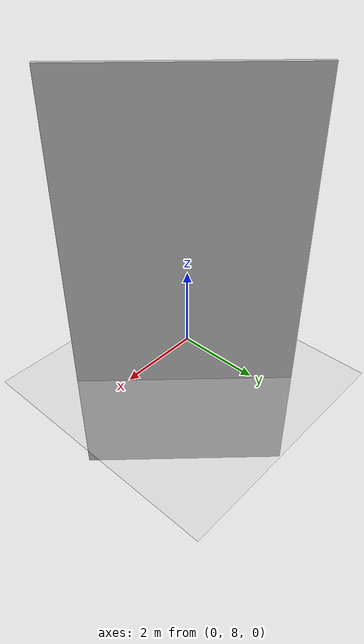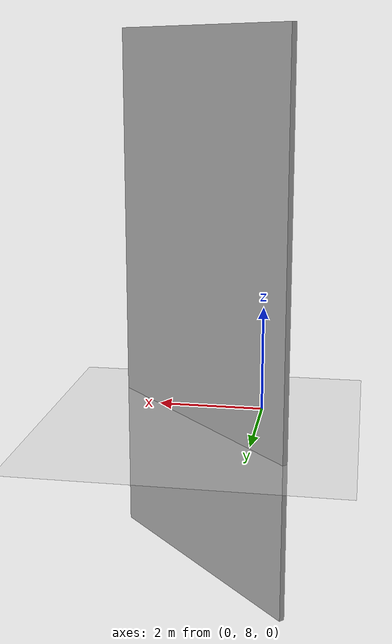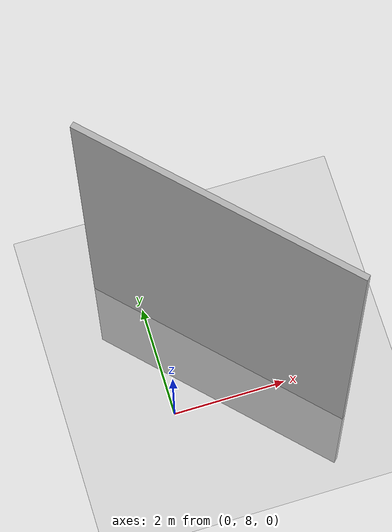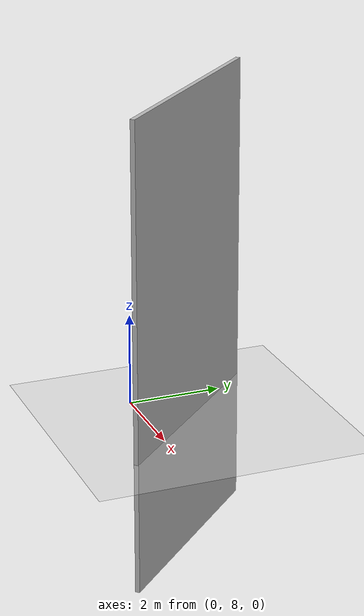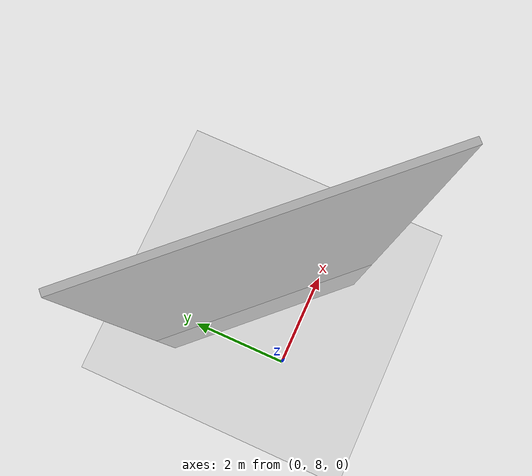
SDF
<sdf version="1.6">
 <world name="default">
  <light name="sun" type="directional">
   <pose>0 0 10 0 -0 0</pose>
   <diffuse>0.8 0.8 0.8 1</diffuse>
   <specular>0.2 0.2 0.2 1</specular>
   <attenuation>
    <range>1000</range>
    <constant>0.9</constant>
    <linear>0.01</linear>
    <quadratic>0.001</quadratic>
   </attenuation>
   <direction>-0.5 0.1 -0.9</direction>
  </light>
  <model name="ground_plane">
   <static>1</static>
   <link name="link">
    <collision name="collision">
     <geometry><plane><normal>0 0 1</normal><size>100 100</size></plane></geometry>
     <surface>
      <contact><collide_bitmask>65535</collide_bitmask></contact>
      <friction><ode><mu>100</mu><mu2>50</mu2></ode></friction>
     </surface>
    </collision>
    <visual name="visual">
     <cast_shadows>0</cast_shadows>
     <geometry><plane><normal>0 0 1</normal><size>100 100</size></plane></geometry>
     <material>
      <script><uri>file://media/materials/scripts/gazebo.material</uri><name>Gazebo/Grey</name></script>
     </material>
    </visual>
   </link>
  </model>
  <gravity>0 0 -9.8</gravity>
  <magnetic_field>6e-06 2.3e-05 -4.2e-05</magnetic_field>
  <atmosphere type="adiabatic"/>
  <physics name="default_physics" default="0" type="ode">
   <max_step_size>0.001</max_step_size>
   <real_time_factor>1</real_time_factor>
   <real_time_update_rate>1000</real_time_update_rate>
  </physics>
  <scene><ambient>0.4 0.4 0.4 1</ambient><background>0.7 0.7 0.7 1</background><shadows>1</shadows></scene>
  <audio><device>default</device></audio>
  <spherical_coordinates>
   <surface_model>EARTH_WGS84</surface_model>
   <latitude_deg>0</latitude_deg>
   <longitude_deg>0</longitude_deg>
   <elevation>0</elevation>
   <heading_deg>0</heading_deg>
  </spherical_coordinates>
  <model name="wall1">
   <link name="base_link">
    <inertial>
     <mass>10</mass>
     <inertia><ixx>0.5</ixx><ixy>0</ixy><ixz>0</ixz><iyy>0.5</iyy><iyz>0</iyz><izz>0.5</izz></inertia>
    </inertial>
    <collision name="base_link_collision">
     <pose>0 0 0.05 0 -0 0</pose>
     <geometry><box><size>4.8 0.1 4.1</size></box></geometry>
    </collision>
    <visual name="base_link_visual"><geometry><box><size>5 0.1 10</size></box></geometry></visual>
   </link>
   <joint name="world_joint" type="fixed"><child>base_link</child><parent>world</parent></joint>
   <pose>1.06951 8.88753 2.1 0 0 -0.805083</pose>
  </model>
 </world>
</sdf>
